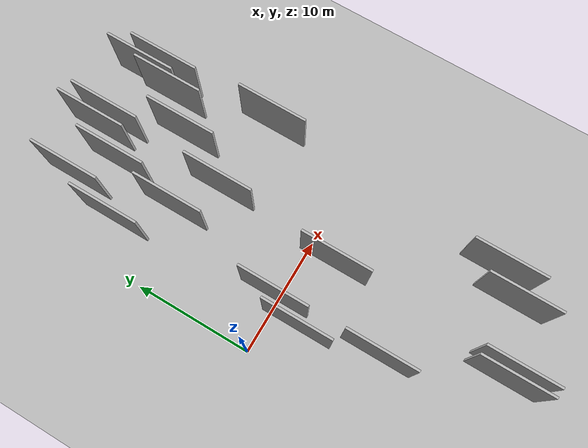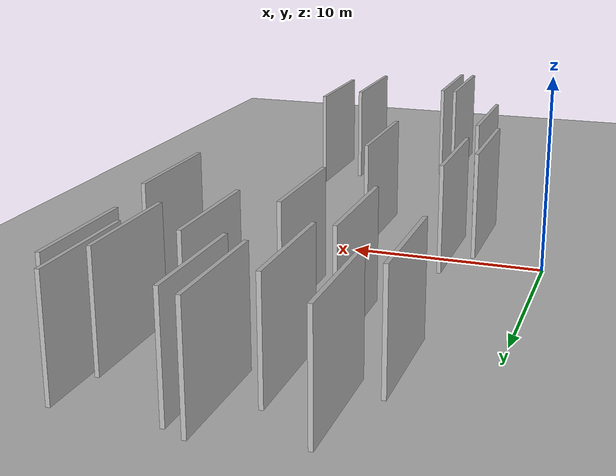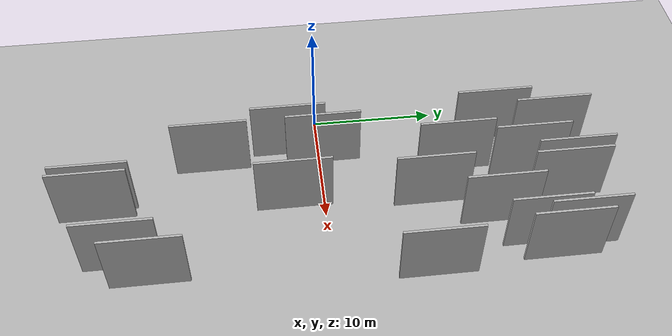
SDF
<?xml version="1.0" encoding="utf-8"?>

<sdf version="1.6">

   <world name="default">

      <gui fullscreen="0">

         <camera name="user_camera">

            <pose>-15 0 4.57585 0 0 0</pose>

            <view_controller>orbit</view_controller>

         </camera>

      </gui>

      <scene>

         <sky>

           <clouds>

             <speed>12</speed>

           </clouds>

         </sky>

         <ambient>0.4 0.4 0.4 1</ambient>

         <background>0.7 0.7 0.7 1</background>

         <shadows>1</shadows>

      </scene>

      <gravity>0 0 -9.8066</gravity>

      <magnetic_field>6e-06 2.3e-05 -4.2e-05</magnetic_field>

      <physics default="0" name="default_physics" type="ode">

         <ode>

            <solver>

               <type>quick</type>

               <iters>10</iters>

               <sor>1.0</sor>

               <use_dynamic_moi_rescaling>0</use_dynamic_moi_rescaling>

            </solver>

            <constraints>

               <cfm>0</cfm>

               <erp>0.2</erp>

               <contact_max_correcting_vel>100</contact_max_correcting_vel>

               <contact_surface_layer>0.001</contact_surface_layer>

            </constraints>

         </ode>

         <max_step_size>0.004</max_step_size>

         <real_time_factor>1</real_time_factor>

         <real_time_update_rate>250</real_time_update_rate>

      </physics>

      <light name="sun" type="directional">

         <cast_shadows>1</cast_shadows>

         <pose>0 0 10 0 0 0</pose>

         <diffuse>0.8 0.8 0.8 1</diffuse>

         <specular>0.2 0.2 0.2 1</specular>

         <attenuation>

            <range>1000</range>

            <constant>0.9</constant>

            <linear>0.01</linear>

            <quadratic>0.001</quadratic>

         </attenuation>

         <direction>-0.5 0.1 -0.9</direction>

      </light>

      <include>

         <name>ground_plane_1</name>

         <uri>model://HANNAS_ground_plane</uri>

         <pose>0 0 0  0 0 0</pose>

      </include>

      <include>

         <name>ground_plane_2</name>

         <uri>model://HANNAS_ground_plane</uri>

         <pose>100 0 0  0 0 0</pose>

      </include>

      <model name="HANNAS_wall_1">

         <static>1</static>

         <pose frame="">4.6826 -8.6515 0.0 0.000000 0.000000 1.570796</pose>

         <link name="link">

            <pose frame="">0 0 3.00 0 0 0</pose>

            <collision name="collision">

               <geometry>

                  <box>

                     <size>6.00 0.2 6.00</size>

                  </box>

               </geometry>

               <max_contacts>10</max_contacts>

               <surface>

                  <contact>

                     <ode/>

                  </contact>

                  <bounce/>

                  <friction>

                     <torsional>

                        <ode/>

                     </torsional>

                     <ode/>

                  </friction>

               </surface>

            </collision>

            <visual name="visual">

               <cast_shadows>0</cast_shadows>

               <geometry>

                  <box>

                     <size>6.00 0.2 6.00</size>

                  </box>

               </geometry>

               <material>

                  <script>

                     <uri>model://HANNAS_wall/materials/scripts</uri>

                     <uri>model://HANNAS_wall/materials/textures</uri>

                     <name>vrc/HANNAS_wall</name>

                  </script>

               </material>

            </visual>

            <self_collide>0</self_collide>

            <enable_wind>0</enable_wind>

            <kinematic>0</kinematic>

         </link>

      </model>

      <model name="HANNAS_wall_2">

         <static>1</static>

         <pose frame="">14.7353 16.0541 0.0 0.000000 0.000000 1.570796</pose>

         <link name="link">

            <pose frame="">0 0 3.00 0 0 0</pose>

            <collision name="collision">

               <geometry>

                  <box>

                     <size>6.00 0.2 6.00</size>

                  </box>

               </geometry>

               <max_contacts>10</max_contacts>

               <surface>

                  <contact>

                     <ode/>

                  </contact>

                  <bounce/>

                  <friction>

                     <torsional>

                        <ode/>

                     </torsional>

                     <ode/>

                  </friction>

               </surface>

            </collision>

            <visual name="visual">

               <cast_shadows>0</cast_shadows>

               <geometry>

                  <box>

                     <size>6.00 0.2 6.00</size>

                  </box>

               </geometry>

               <material>

                  <script>

                     <uri>model://HANNAS_wall/materials/scripts</uri>

                     <uri>model://HANNAS_wall/materials/textures</uri>

                     <name>vrc/HANNAS_wall</name>

                  </script>

               </material>

            </visual>

            <self_collide>0</self_collide>

            <enable_wind>0</enable_wind>

            <kinematic>0</kinematic>

         </link>

      </model>

      <model name="HANNAS_wall_3">

         <static>1</static>

         <pose frame="">9.2993 19.5415 0.0 0.000000 0.000000 1.570796</pose>

         <link name="link">

            <pose frame="">0 0 3.00 0 0 0</pose>

            <collision name="collision">

               <geometry>

                  <box>

                     <size>6.00 0.2 6.00</size>

                  </box>

               </geometry>

               <max_contacts>10</max_contacts>

               <surface>

                  <contact>

                     <ode/>

                  </contact>

                  <bounce/>

                  <friction>

                     <torsional>

                        <ode/>

                     </torsional>

                     <ode/>

                  </friction>

               </surface>

            </collision>

            <visual name="visual">

               <cast_shadows>0</cast_shadows>

               <geometry>

                  <box>

                     <size>6.00 0.2 6.00</size>

                  </box>

               </geometry>

               <material>

                  <script>

                     <uri>model://HANNAS_wall/materials/scripts</uri>

                     <uri>model://HANNAS_wall/materials/textures</uri>

                     <name>vrc/HANNAS_wall</name>

                  </script>

               </material>

            </visual>

            <self_collide>0</self_collide>

            <enable_wind>0</enable_wind>

            <kinematic>0</kinematic>

         </link>

      </model>

      <model name="HANNAS_wall_4">

         <static>1</static>

         <pose frame="">3.4730 14.3780 0.0 0.000000 0.000000 1.570796</pose>

         <link name="link">

            <pose frame="">0 0 3.00 0 0 0</pose>

            <collision name="collision">

               <geometry>

                  <box>

                     <size>6.00 0.2 6.00</size>

                  </box>

               </geometry>

               <max_contacts>10</max_contacts>

               <surface>

                  <contact>

                     <ode/>

                  </contact>

                  <bounce/>

                  <friction>

                     <torsional>

                        <ode/>

                     </torsional>

                     <ode/>

                  </friction>

               </surface>

            </collision>

            <visual name="visual">

               <cast_shadows>0</cast_shadows>

               <geometry>

                  <box>

                     <size>6.00 0.2 6.00</size>

                  </box>

               </geometry>

               <material>

                  <script>

                     <uri>model://HANNAS_wall/materials/scripts</uri>

                     <uri>model://HANNAS_wall/materials/textures</uri>

                     <name>vrc/HANNAS_wall</name>

                  </script>

               </material>

            </visual>

            <self_collide>0</self_collide>

            <enable_wind>0</enable_wind>

            <kinematic>0</kinematic>

         </link>

      </model>

      <model name="HANNAS_wall_5">

         <static>1</static>

         <pose frame="">10.3998 19.0183 0.0 0.000000 0.000000 1.570796</pose>

         <link name="link">

            <pose frame="">0 0 3.00 0 0 0</pose>

            <collision name="collision">

               <geometry>

                  <box>

                     <size>6.00 0.2 6.00</size>

                  </box>

               </geometry>

               <max_contacts>10</max_contacts>

               <surface>

                  <contact>

                     <ode/>

                  </contact>

                  <bounce/>

                  <friction>

                     <torsional>

                        <ode/>

                     </torsional>

                     <ode/>

                  </friction>

               </surface>

            </collision>

            <visual name="visual">

               <cast_shadows>0</cast_shadows>

               <geometry>

                  <box>

                     <size>6.00 0.2 6.00</size>

                  </box>

               </geometry>

               <material>

                  <script>

                     <uri>model://HANNAS_wall/materials/scripts</uri>

                     <uri>model://HANNAS_wall/materials/textures</uri>

                     <name>vrc/HANNAS_wall</name>

                  </script>

               </material>

            </visual>

            <self_collide>0</self_collide>

            <enable_wind>0</enable_wind>

            <kinematic>0</kinematic>

         </link>

      </model>

      <model name="HANNAS_wall_6">

         <static>1</static>

         <pose frame="">15.2811 -13.5466 0.0 0.000000 0.000000 1.570796</pose>

         <link name="link">

            <pose frame="">0 0 3.00 0 0 0</pose>

            <collision name="collision">

               <geometry>

                  <box>

                     <size>6.00 0.2 6.00</size>

                  </box>

               </geometry>

               <max_contacts>10</max_contacts>

               <surface>

                  <contact>

                     <ode/>

                  </contact>

                  <bounce/>

                  <friction>

                     <torsional>

                        <ode/>

                     </torsional>

                     <ode/>

                  </friction>

               </surface>

            </collision>

            <visual name="visual">

               <cast_shadows>0</cast_shadows>

               <geometry>

                  <box>

                     <size>6.00 0.2 6.00</size>

                  </box>

               </geometry>

               <material>

                  <script>

                     <uri>model://HANNAS_wall/materials/scripts</uri>

                     <uri>model://HANNAS_wall/materials/textures</uri>

                     <name>vrc/HANNAS_wall</name>

                  </script>

               </material>

            </visual>

            <self_collide>0</self_collide>

            <enable_wind>0</enable_wind>

            <kinematic>0</kinematic>

         </link>

      </model>

      <model name="HANNAS_wall_7">

         <static>1</static>

         <pose frame="">7.9473 -17.6797 0.0 0.000000 0.000000 1.570796</pose>

         <link name="link">

            <pose frame="">0 0 3.00 0 0 0</pose>

            <collision name="collision">

               <geometry>

                  <box>

                     <size>6.00 0.2 6.00</size>

                  </box>

               </geometry>

               <max_contacts>10</max_contacts>

               <surface>

                  <contact>

                     <ode/>

                  </contact>

                  <bounce/>

                  <friction>

                     <torsional>

                        <ode/>

                     </torsional>

                     <ode/>

                  </friction>

               </surface>

            </collision>

            <visual name="visual">

               <cast_shadows>0</cast_shadows>

               <geometry>

                  <box>

                     <size>6.00 0.2 6.00</size>

                  </box>

               </geometry>

               <material>

                  <script>

                     <uri>model://HANNAS_wall/materials/scripts</uri>

                     <uri>model://HANNAS_wall/materials/textures</uri>

                     <name>vrc/HANNAS_wall</name>

                  </script>

               </material>

            </visual>

            <self_collide>0</self_collide>

            <enable_wind>0</enable_wind>

            <kinematic>0</kinematic>

         </link>

      </model>

      <model name="HANNAS_wall_8">

         <static>1</static>

         <pose frame="">9.2176 -2.3563 0.0 0.000000 0.000000 1.570796</pose>

         <link name="link">

            <pose frame="">0 0 3.00 0 0 0</pose>

            <collision name="collision">

               <geometry>

                  <box>

                     <size>6.00 0.2 6.00</size>

                  </box>

               </geometry>

               <max_contacts>10</max_contacts>

               <surface>

                  <contact>

                     <ode/>

                  </contact>

                  <bounce/>

                  <friction>

                     <torsional>

                        <ode/>

                     </torsional>

                     <ode/>

                  </friction>

               </surface>

            </collision>

            <visual name="visual">

               <cast_shadows>0</cast_shadows>

               <geometry>

                  <box>

                     <size>6.00 0.2 6.00</size>

                  </box>

               </geometry>

               <material>

                  <script>

                     <uri>model://HANNAS_wall/materials/scripts</uri>

                     <uri>model://HANNAS_wall/materials/textures</uri>

                     <name>vrc/HANNAS_wall</name>

                  </script>

               </material>

            </visual>

            <self_collide>0</self_collide>

            <enable_wind>0</enable_wind>

            <kinematic>0</kinematic>

         </link>

      </model>

      <model name="HANNAS_wall_9">

         <static>1</static>

         <pose frame="">7.5738 16.5759 0.0 0.000000 0.000000 1.570796</pose>

         <link name="link">

            <pose frame="">0 0 3.00 0 0 0</pose>

            <collision name="collision">

               <geometry>

                  <box>

                     <size>6.00 0.2 6.00</size>

                  </box>

               </geometry>

               <max_contacts>10</max_contacts>

               <surface>

                  <contact>

                     <ode/>

                  </contact>

                  <bounce/>

                  <friction>

                     <torsional>

                        <ode/>

                     </torsional>

                     <ode/>

                  </friction>

               </surface>

            </collision>

            <visual name="visual">

               <cast_shadows>0</cast_shadows>

               <geometry>

                  <box>

                     <size>6.00 0.2 6.00</size>

                  </box>

               </geometry>

               <material>

                  <script>

                     <uri>model://HANNAS_wall/materials/scripts</uri>

                     <uri>model://HANNAS_wall/materials/textures</uri>

                     <name>vrc/HANNAS_wall</name>

                  </script>

               </material>

            </visual>

            <self_collide>0</self_collide>

            <enable_wind>0</enable_wind>

            <kinematic>0</kinematic>

         </link>

      </model>

      <model name="HANNAS_wall_10">

         <static>1</static>

         <pose frame="">9.9238 8.4095 0.0 0.000000 0.000000 1.570796</pose>

         <link name="link">

            <pose frame="">0 0 3.00 0 0 0</pose>

            <collision name="collision">

               <geometry>

                  <box>

                     <size>6.00 0.2 6.00</size>

                  </box>

               </geometry>

               <max_contacts>10</max_contacts>

               <surface>

                  <contact>

                     <ode/>

                  </contact>

                  <bounce/>

                  <friction>

                     <torsional>

                        <ode/>

                     </torsional>

                     <ode/>

                  </friction>

               </surface>

            </collision>

            <visual name="visual">

               <cast_shadows>0</cast_shadows>

               <geometry>

                  <box>

                     <size>6.00 0.2 6.00</size>

                  </box>

               </geometry>

               <material>

                  <script>

                     <uri>model://HANNAS_wall/materials/scripts</uri>

                     <uri>model://HANNAS_wall/materials/textures</uri>

                     <name>vrc/HANNAS_wall</name>

                  </script>

               </material>

            </visual>

            <self_collide>0</self_collide>

            <enable_wind>0</enable_wind>

            <kinematic>0</kinematic>

         </link>

      </model>

      <model name="HANNAS_wall_11">

         <static>1</static>

         <pose frame="">12.3050 13.2713 0.0 0.000000 0.000000 1.570796</pose>

         <link name="link">

            <pose frame="">0 0 3.00 0 0 0</pose>

            <collision name="collision">

               <geometry>

                  <box>

                     <size>6.00 0.2 6.00</size>

                  </box>

               </geometry>

               <max_contacts>10</max_contacts>

               <surface>

                  <contact>

                     <ode/>

                  </contact>

                  <bounce/>

                  <friction>

                     <torsional>

                        <ode/>

                     </torsional>

                     <ode/>

                  </friction>

               </surface>

            </collision>

            <visual name="visual">

               <cast_shadows>0</cast_shadows>

               <geometry>

                  <box>

                     <size>6.00 0.2 6.00</size>

                  </box>

               </geometry>

               <material>

                  <script>

                     <uri>model://HANNAS_wall/materials/scripts</uri>

                     <uri>model://HANNAS_wall/materials/textures</uri>

                     <name>vrc/HANNAS_wall</name>

                  </script>

               </material>

            </visual>

            <self_collide>0</self_collide>

            <enable_wind>0</enable_wind>

            <kinematic>0</kinematic>

         </link>

      </model>

      <model name="HANNAS_wall_12">

         <static>1</static>

         <pose frame="">6.6125 10.7697 0.0 0.000000 0.000000 1.570796</pose>

         <link name="link">

            <pose frame="">0 0 3.00 0 0 0</pose>

            <collision name="collision">

               <geometry>

                  <box>

                     <size>6.00 0.2 6.00</size>

                  </box>

               </geometry>

               <max_contacts>10</max_contacts>

               <surface>

                  <contact>

                     <ode/>

                  </contact>

                  <bounce/>

                  <friction>

                     <torsional>

                        <ode/>

                     </torsional>

                     <ode/>

                  </friction>

               </surface>

            </collision>

            <visual name="visual">

               <cast_shadows>0</cast_shadows>

               <geometry>

                  <box>

                     <size>6.00 0.2 6.00</size>

                  </box>

               </geometry>

               <material>

                  <script>

                     <uri>model://HANNAS_wall/materials/scripts</uri>

                     <uri>model://HANNAS_wall/materials/textures</uri>

                     <name>vrc/HANNAS_wall</name>

                  </script>

               </material>

            </visual>

            <self_collide>0</self_collide>

            <enable_wind>0</enable_wind>

            <kinematic>0</kinematic>

         </link>

      </model>

      <model name="HANNAS_wall_13">

         <static>1</static>

         <pose frame="">8.7479 -17.7737 0.0 0.000000 0.000000 1.570796</pose>

         <link name="link">

            <pose frame="">0 0 3.00 0 0 0</pose>

            <collision name="collision">

               <geometry>

                  <box>

                     <size>6.00 0.2 6.00</size>

                  </box>

               </geometry>

               <max_contacts>10</max_contacts>

               <surface>

                  <contact>

                     <ode/>

                  </contact>

                  <bounce/>

                  <friction>

                     <torsional>

                        <ode/>

                     </torsional>

                     <ode/>

                  </friction>

               </surface>

            </collision>

            <visual name="visual">

               <cast_shadows>0</cast_shadows>

               <geometry>

                  <box>

                     <size>6.00 0.2 6.00</size>

                  </box>

               </geometry>

               <material>

                  <script>

                     <uri>model://HANNAS_wall/materials/scripts</uri>

                     <uri>model://HANNAS_wall/materials/textures</uri>

                     <name>vrc/HANNAS_wall</name>

                  </script>

               </material>

            </visual>

            <self_collide>0</self_collide>

            <enable_wind>0</enable_wind>

            <kinematic>0</kinematic>

         </link>

      </model>

      <model name="HANNAS_wall_14">

         <static>1</static>

         <pose frame="">15.1891 18.8920 0.0 0.000000 0.000000 1.570796</pose>

         <link name="link">

            <pose frame="">0 0 3.00 0 0 0</pose>

            <collision name="collision">

               <geometry>

                  <box>

                     <size>6.00 0.2 6.00</size>

                  </box>

               </geometry>

               <max_contacts>10</max_contacts>

               <surface>

                  <contact>

                     <ode/>

                  </contact>

                  <bounce/>

                  <friction>

                     <torsional>

                        <ode/>

                     </torsional>

                     <ode/>

                  </friction>

               </surface>

            </collision>

            <visual name="visual">

               <cast_shadows>0</cast_shadows>

               <geometry>

                  <box>

                     <size>6.00 0.2 6.00</size>

                  </box>

               </geometry>

               <material>

                  <script>

                     <uri>model://HANNAS_wall/materials/scripts</uri>

                     <uri>model://HANNAS_wall/materials/textures</uri>

                     <name>vrc/HANNAS_wall</name>

                  </script>

               </material>

            </visual>

            <self_collide>0</self_collide>

            <enable_wind>0</enable_wind>

            <kinematic>0</kinematic>

         </link>

      </model>

      <model name="HANNAS_wall_15">

         <static>1</static>

         <pose frame="">4.6377 0.3325 0.0 0.000000 0.000000 1.570796</pose>

         <link name="link">

            <pose frame="">0 0 3.00 0 0 0</pose>

            <collision name="collision">

               <geometry>

                  <box>

                     <size>6.00 0.2 6.00</size>

                  </box>

               </geometry>

               <max_contacts>10</max_contacts>

               <surface>

                  <contact>

                     <ode/>

                  </contact>

                  <bounce/>

                  <friction>

                     <torsional>

                        <ode/>

                     </torsional>

                     <ode/>

                  </friction>

               </surface>

            </collision>

            <visual name="visual">

               <cast_shadows>0</cast_shadows>

               <geometry>

                  <box>

                     <size>6.00 0.2 6.00</size>

                  </box>

               </geometry>

               <material>

                  <script>

                     <uri>model://HANNAS_wall/materials/scripts</uri>

                     <uri>model://HANNAS_wall/materials/textures</uri>

                     <name>vrc/HANNAS_wall</name>

                  </script>

               </material>

            </visual>

            <self_collide>0</self_collide>

            <enable_wind>0</enable_wind>

            <kinematic>0</kinematic>

         </link>

      </model>

      <model name="HANNAS_wall_16">

         <static>1</static>

         <pose frame="">13.5779 -15.6005 0.0 0.000000 0.000000 1.570796</pose>

         <link name="link">

            <pose frame="">0 0 3.00 0 0 0</pose>

            <collision name="collision">

               <geometry>

                  <box>

                     <size>6.00 0.2 6.00</size>

                  </box>

               </geometry>

               <max_contacts>10</max_contacts>

               <surface>

                  <contact>

                     <ode/>

                  </contact>

                  <bounce/>

                  <friction>

                     <torsional>

                        <ode/>

                     </torsional>

                     <ode/>

                  </friction>

               </surface>

            </collision>

            <visual name="visual">

               <cast_shadows>0</cast_shadows>

               <geometry>

                  <box>

                     <size>6.00 0.2 6.00</size>

                  </box>

               </geometry>

               <material>

                  <script>

                     <uri>model://HANNAS_wall/materials/scripts</uri>

                     <uri>model://HANNAS_wall/materials/textures</uri>

                     <name>vrc/HANNAS_wall</name>

                  </script>

               </material>

            </visual>

            <self_collide>0</self_collide>

            <enable_wind>0</enable_wind>

            <kinematic>0</kinematic>

         </link>

      </model>

      <model name="HANNAS_wall_17">

         <static>1</static>

         <pose frame="">3.4741 -2.3561 0.0 0.000000 0.000000 1.570796</pose>

         <link name="link">

            <pose frame="">0 0 3.00 0 0 0</pose>

            <collision name="collision">

               <geometry>

                  <box>

                     <size>6.00 0.2 6.00</size>

                  </box>

               </geometry>

               <max_contacts>10</max_contacts>

               <surface>

                  <contact>

                     <ode/>

                  </contact>

                  <bounce/>

                  <friction>

                     <torsional>

                        <ode/>

                     </torsional>

                     <ode/>

                  </friction>

               </surface>

            </collision>

            <visual name="visual">

               <cast_shadows>0</cast_shadows>

               <geometry>

                  <box>

                     <size>6.00 0.2 6.00</size>

                  </box>

               </geometry>

               <material>

                  <script>

                     <uri>model://HANNAS_wall/materials/scripts</uri>

                     <uri>model://HANNAS_wall/materials/textures</uri>

                     <name>vrc/HANNAS_wall</name>

                  </script>

               </material>

            </visual>

            <self_collide>0</self_collide>

            <enable_wind>0</enable_wind>

            <kinematic>0</kinematic>

         </link>

      </model>

      <model name="HANNAS_wall_18">

         <static>1</static>

         <pose frame="">4.8170 18.8641 0.0 0.000000 0.000000 1.570796</pose>

         <link name="link">

            <pose frame="">0 0 3.00 0 0 0</pose>

            <collision name="collision">

               <geometry>

                  <box>

                     <size>6.00 0.2 6.00</size>

                  </box>

               </geometry>

               <max_contacts>10</max_contacts>

               <surface>

                  <contact>

                     <ode/>

                  </contact>

                  <bounce/>

                  <friction>

                     <torsional>

                        <ode/>

                     </torsional>

                     <ode/>

                  </friction>

               </surface>

            </collision>

            <visual name="visual">

               <cast_shadows>0</cast_shadows>

               <geometry>

                  <box>

                     <size>6.00 0.2 6.00</size>

                  </box>

               </geometry>

               <material>

                  <script>

                     <uri>model://HANNAS_wall/materials/scripts</uri>

                     <uri>model://HANNAS_wall/materials/textures</uri>

                     <name>vrc/HANNAS_wall</name>

                  </script>

               </material>

            </visual>

            <self_collide>0</self_collide>

            <enable_wind>0</enable_wind>

            <kinematic>0</kinematic>

         </link>

      </model>

      <model name="HANNAS_wall_19">

         <static>1</static>

         <pose frame="">16.1621 17.3248 0.0 0.000000 0.000000 1.570796</pose>

         <link name="link">

            <pose frame="">0 0 3.00 0 0 0</pose>

            <collision name="collision">

               <geometry>

                  <box>

                     <size>6.00 0.2 6.00</size>

                  </box>

               </geometry>

               <max_contacts>10</max_contacts>

               <surface>

                  <contact>

                     <ode/>

                  </contact>

                  <bounce/>

                  <friction>

                     <torsional>

                        <ode/>

                     </torsional>

                     <ode/>

                  </friction>

               </surface>

            </collision>

            <visual name="visual">

               <cast_shadows>0</cast_shadows>

               <geometry>

                  <box>

                     <size>6.00 0.2 6.00</size>

                  </box>

               </geometry>

               <material>

                  <script>

                     <uri>model://HANNAS_wall/materials/scripts</uri>

                     <uri>model://HANNAS_wall/materials/textures</uri>

                     <name>vrc/HANNAS_wall</name>

                  </script>

               </material>

            </visual>

            <self_collide>0</self_collide>

            <enable_wind>0</enable_wind>

            <kinematic>0</kinematic>

         </link>

      </model>

      <model name="HANNAS_wall_20">

         <static>1</static>

         <pose frame="">16.7726 7.7214 0.0 0.000000 0.000000 1.570796</pose>

         <link name="link">

            <pose frame="">0 0 3.00 0 0 0</pose>

            <collision name="collision">

               <geometry>

                  <box>

                     <size>6.00 0.2 6.00</size>

                  </box>

               </geometry>

               <max_contacts>10</max_contacts>

               <surface>

                  <contact>

                     <ode/>

                  </contact>

                  <bounce/>

                  <friction>

                     <torsional>

                        <ode/>

                     </torsional>

                     <ode/>

                  </friction>

               </surface>

            </collision>

            <visual name="visual">

               <cast_shadows>0</cast_shadows>

               <geometry>

                  <box>

                     <size>6.00 0.2 6.00</size>

                  </box>

               </geometry>

               <material>

                  <script>

                     <uri>model://HANNAS_wall/materials/scripts</uri>

                     <uri>model://HANNAS_wall/materials/textures</uri>

                     <name>vrc/HANNAS_wall</name>

                  </script>

               </material>

            </visual>

            <self_collide>0</self_collide>

            <enable_wind>0</enable_wind>

            <kinematic>0</kinematic>

         </link>

      </model>

   </world>

</sdf>

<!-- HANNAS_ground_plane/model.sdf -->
<sdf version="1.4">
<model name="HANNAS_ground_plane">
  <static>true</static>
    <link name="link">
      <collision name="collision">
        <geometry>
          <plane>
            <normal>0 0 1</normal>
            <size>1000 1000</size>
          </plane>
        </geometry>
        <surface>
          <friction>
            <ode>
              <mu>100</mu>
              <mu2>50</mu2>
            </ode>
          </friction>
        </surface>
      </collision>
      <visual name="visual">
        <cast_shadows>false</cast_shadows>
        <geometry>
          <plane>
            <normal>0 0 1</normal>
            <size>1000 1000</size>
          </plane>
        </geometry>
        <material>
          <script>
            <uri>model://HANNAS_ground_plane/materials/scripts/HANNAS_ground_plane.material</uri>
	    <uri>model://HANNAS_ground_plane/materials/textures</uri>
            <name>HANNASGroundPlane/Image</name>
          </script>
        </material>
      </visual>
    </link>
  </model>
</sdf>
